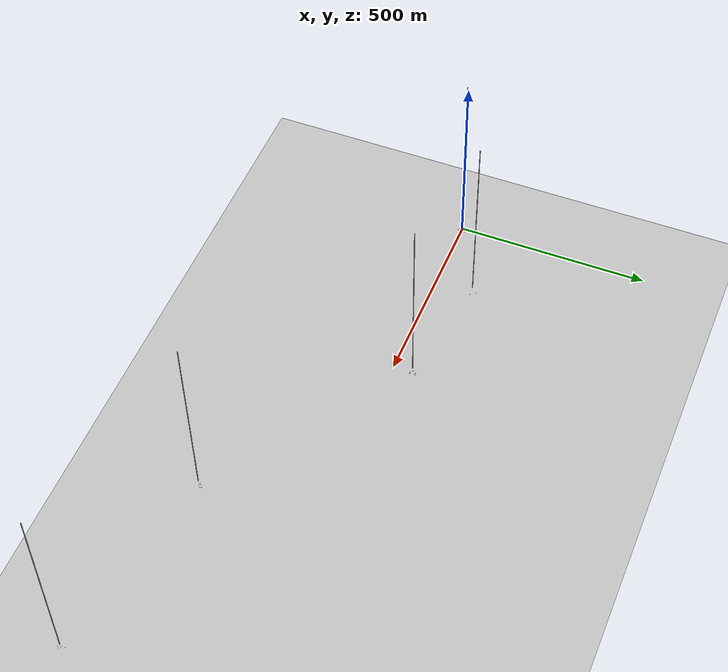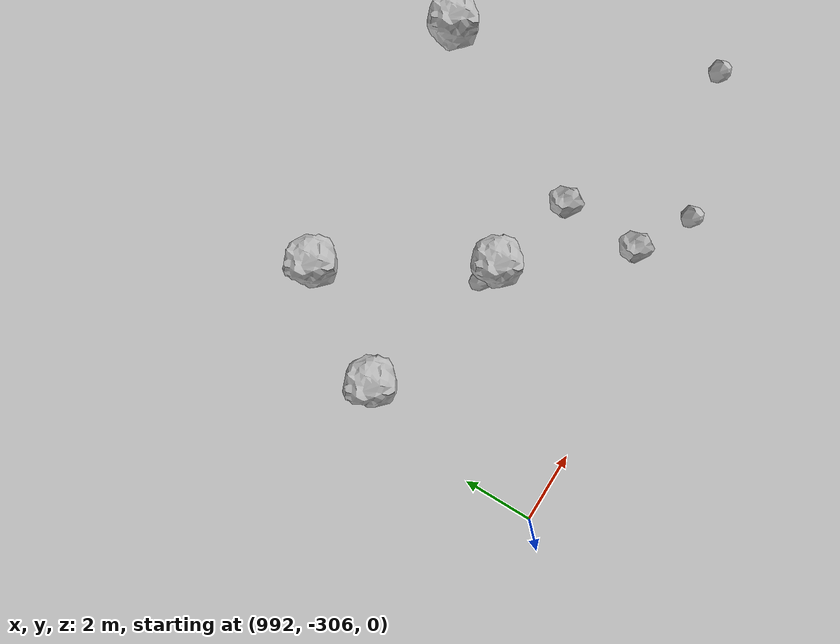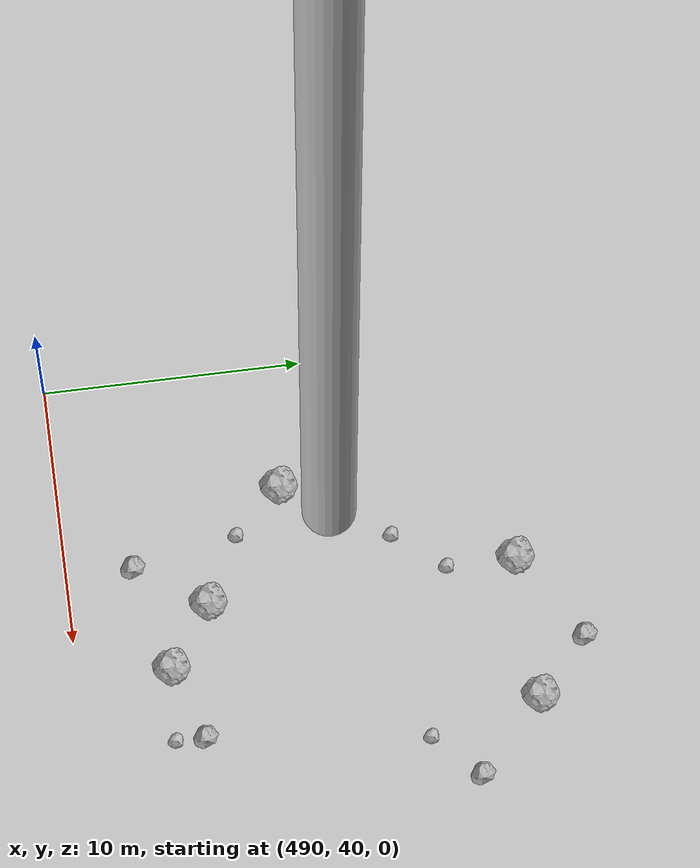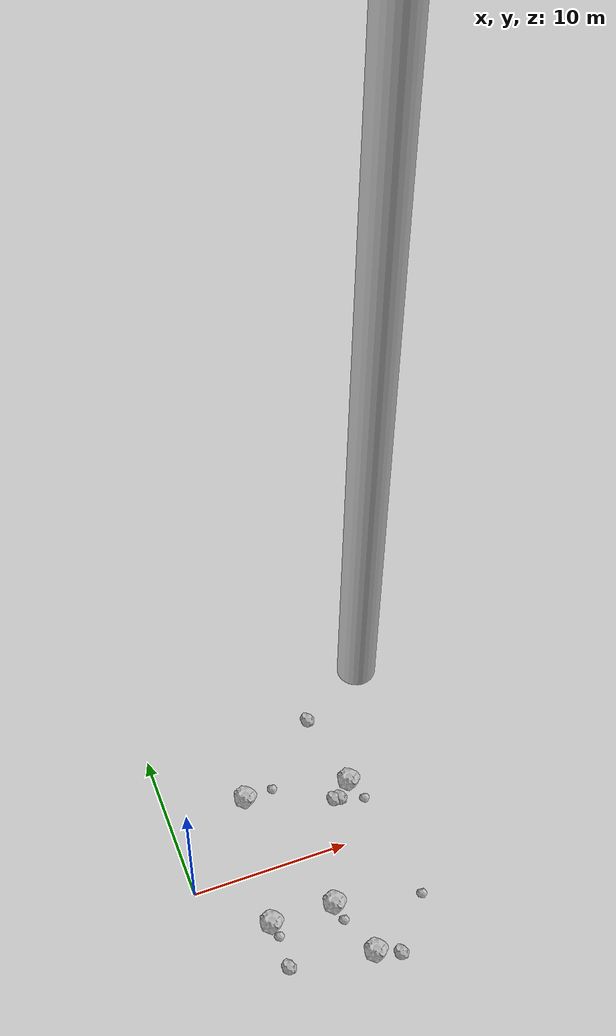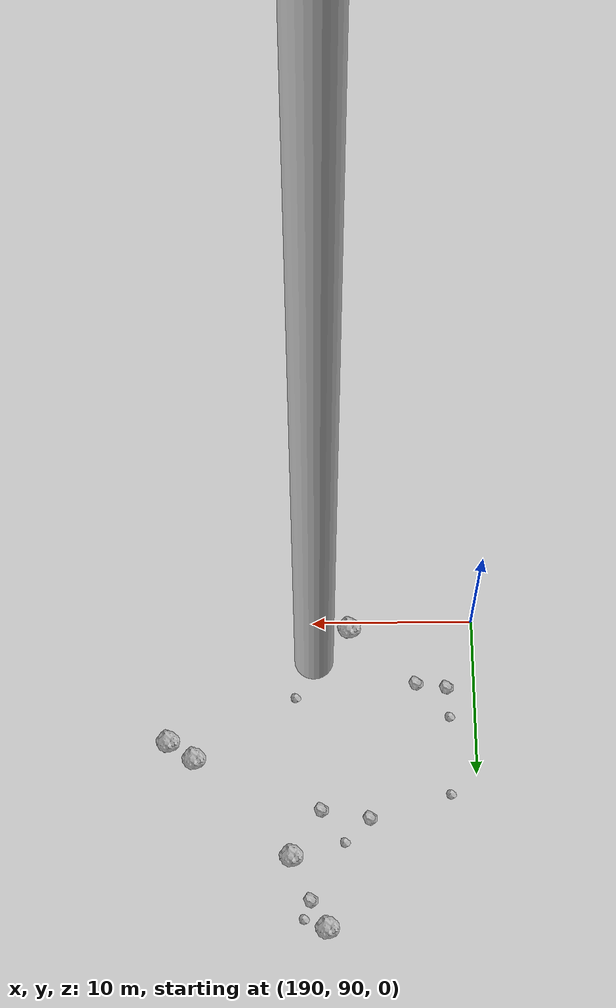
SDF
<?xml version="1.0" ?>
<sdf version="1.6">
  <world name="default">

    <include>
      <uri>model://custom_ground</uri>
    </include>

    <include>
      <uri>model://sun</uri>
    </include>

    <spherical_coordinates>
      <surface_model>EARTH_WGS84</surface_model>
      <latitude_deg>38.161479</latitude_deg>
      <longitude_deg>-122.454630</longitude_deg>
      <elevation>488.0</elevation>
      <heading_deg>90</heading_deg>
    </spherical_coordinates>

    <model name="rock1_0_0">
      <include>
        <uri>model://rock1</uri>
        <pose>9.150471801342219 -7.473052161815701 0.5 0 0 0</pose>
      </include>
    </model>
    <model name="rock1_0_1">
      <include>
        <uri>model://rock1</uri>
        <pose>5.167823400054217 5.175636106655805 0.5 0 0 0</pose>
      </include>
    </model>
    <model name="rock1_0_2">
      <include>
        <uri>model://rock1</uri>
        <pose>7.9299818525817205 -3.67184685547727 0.5 0 0 0</pose>
      </include>
    </model>
    <model name="rock1_0_3">
      <include>
        <uri>model://rock1</uri>
        <pose>3.8368474808703557 -3.5781874268712466 0.5 0 0 0</pose>
      </include>
    </model>
    <model name="rock1_0_4">
      <include>
        <uri>model://rock1</uri>
        <pose>11.921238371059673 4.133832318564892 0.5 0 0 0</pose>
      </include>
    </model>
    <model name="rock2_0_0">
      <include>
        <uri>model://rock2</uri>
        <pose>10.508399051733974 3.2614882881323553 0.3 0 0 0</pose>
      </include>
    </model>
    <model name="rock2_0_1">
      <include>
        <uri>model://rock2</uri>
        <pose>3.825563395585798 -6.585295406707871 0.3 0 0 0</pose>
      </include>
    </model>
    <model name="rock2_0_2">
      <include>
        <uri>model://rock2</uri>
        <pose>10.930734866331285 3.2168985282957365 0.3 0 0 0</pose>
      </include>
    </model>
    <model name="rock2_0_3">
      <include>
        <uri>model://rock2</uri>
        <pose>10.563114441323533 -8.015997808386096 0.3 0 0 0</pose>
      </include>
    </model>
    <model name="rock2_0_4">
      <include>
        <uri>model://rock2</uri>
        <pose>10.997699034199616 9.456145096683759 0.3 0 0 0</pose>
      </include>
    </model>
    <model name="rock3_0_0">
      <include>
        <uri>model://rock3</uri>
        <pose>3.9627393834365043 -4.527139709418961 0.2 0 0 0</pose>
      </include>
    </model>
    <model name="rock3_0_1">
      <include>
        <uri>model://rock3</uri>
        <pose>8.07414433305373 -4.85778398780349 0.2 0 0 0</pose>
      </include>
    </model>
    <model name="rock3_0_2">
      <include>
        <uri>model://rock3</uri>
        <pose>7.008905268797278 5.287390021358775 0.2 0 0 0</pose>
      </include>
    </model>
    <model name="rock3_0_3">
      <include>
        <uri>model://rock3</uri>
        <pose>13.25361083849768 -4.847750537729983 0.2 0 0 0</pose>
      </include>
    </model>
    <model name="rock3_0_4">
      <include>
        <uri>model://rock3</uri>
        <pose>12.414763310612045 2.646355239074495 0.2 0 0 0</pose>
      </include>
    </model>
    <model name="rock1_1_0">
      <include>
        <uri>model://rock1</uri>
        <pose>207.40053491550768 99.01035222062072 0.5 0 0 0</pose>
      </include>
    </model>
    <model name="rock1_1_1">
      <include>
        <uri>model://rock1</uri>
        <pose>201.45299740907 105.1947068483533 0.5 0 0 0</pose>
      </include>
    </model>
    <model name="rock1_1_2">
      <include>
        <uri>model://rock1</uri>
        <pose>209.00854979160144 97.89572977752114 0.5 0 0 0</pose>
      </include>
    </model>
    <model name="rock1_1_3">
      <include>
        <uri>model://rock1</uri>
        <pose>199.324424026757 109.60541903111258 0.5 0 0 0</pose>
      </include>
    </model>
    <model name="rock1_1_4">
      <include>
        <uri>model://rock1</uri>
        <pose>197.71725552670213 90.483261907993 0.5 0 0 0</pose>
      </include>
    </model>
    <model name="rock2_1_0">
      <include>
        <uri>model://rock2</uri>
        <pose>191.70085358847507 94.43719891479326 0.3 0 0 0</pose>
      </include>
    </model>
    <model name="rock2_1_1">
      <include>
        <uri>model://rock2</uri>
        <pose>199.59538492917244 102.29649284303642 0.3 0 0 0</pose>
      </include>
    </model>
    <model name="rock2_1_2">
      <include>
        <uri>model://rock2</uri>
        <pose>200.28814639050606 107.89798684320772 0.3 0 0 0</pose>
      </include>
    </model>
    <model name="rock2_1_3">
      <include>
        <uri>model://rock2</uri>
        <pose>196.63041585179366 102.83808341943346 0.3 0 0 0</pose>
      </include>
    </model>
    <model name="rock2_1_4">
      <include>
        <uri>model://rock2</uri>
        <pose>193.60005651765013 94.15058675718574 0.3 0 0 0</pose>
      </include>
    </model>
    <model name="rock3_1_0">
      <include>
        <uri>model://rock3</uri>
        <pose>191.6115662403056 101.33191027167507 0.2 0 0 0</pose>
      </include>
    </model>
    <model name="rock3_1_1">
      <include>
        <uri>model://rock3</uri>
        <pose>198.15097501175578 104.29584970769525 0.2 0 0 0</pose>
      </include>
    </model>
    <model name="rock3_1_2">
      <include>
        <uri>model://rock3</uri>
        <pose>200.6749475043958 109.01098142266551 0.2 0 0 0</pose>
      </include>
    </model>
    <model name="rock3_1_3">
      <include>
        <uri>model://rock3</uri>
        <pose>201.0869280340075 94.99433841527939 0.2 0 0 0</pose>
      </include>
    </model>
    <model name="rock3_1_4">
      <include>
        <uri>model://rock3</uri>
        <pose>191.5398464659155 96.31913497445817 0.2 0 0 0</pose>
      </include>
    </model>
    <model name="rock1_2_0">
      <include>
        <uri>model://rock1</uri>
        <pose>501.50585608895625 43.67626567476079 0.5 0 0 0</pose>
      </include>
    </model>
    <model name="rock1_2_1">
      <include>
        <uri>model://rock1</uri>
        <pose>498.73142863910175 57.458035392023355 0.5 0 0 0</pose>
      </include>
    </model>
    <model name="rock1_2_2">
      <include>
        <uri>model://rock1</uri>
        <pose>499.11245118252856 45.39229912715081 0.5 0 0 0</pose>
      </include>
    </model>
    <model name="rock1_2_3">
      <include>
        <uri>model://rock1</uri>
        <pose>504.26146577297106 57.75685895947929 0.5 0 0 0</pose>
      </include>
    </model>
    <model name="rock1_2_4">
      <include>
        <uri>model://rock1</uri>
        <pose>494.86662282946736 48.649978901016546 0.5 0 0 0</pose>
      </include>
    </model>
    <model name="rock2_2_0">
      <include>
        <uri>model://rock2</uri>
        <pose>502.0592009257013 59.76517866240724 0.3 0 0 0</pose>
      </include>
    </model>
    <model name="rock2_2_1">
      <include>
        <uri>model://rock2</uri>
        <pose>494.0318397506049 50.38838850160721 0.3 0 0 0</pose>
      </include>
    </model>
    <model name="rock2_2_2">
      <include>
        <uri>model://rock2</uri>
        <pose>507.04086433453404 55.17131277157275 0.3 0 0 0</pose>
      </include>
    </model>
    <model name="rock2_2_3">
      <include>
        <uri>model://rock2</uri>
        <pose>504.32437044802595 44.691929137217855 0.3 0 0 0</pose>
      </include>
    </model>
    <model name="rock2_2_4">
      <include>
        <uri>model://rock2</uri>
        <pose>497.3491859056773 42.64188131965045 0.3 0 0 0</pose>
      </include>
    </model>
    <model name="rock3_2_0">
      <include>
        <uri>model://rock3</uri>
        <pose>505.33243532535676 53.34719330410047 0.2 0 0 0</pose>
      </include>
    </model>
    <model name="rock3_2_1">
      <include>
        <uri>model://rock3</uri>
        <pose>497.21984541513547 52.74769599617005 0.2 0 0 0</pose>
      </include>
    </model>
    <model name="rock3_2_2">
      <include>
        <uri>model://rock3</uri>
        <pose>498.71901266122643 54.74029400108277 0.2 0 0 0</pose>
      </include>
    </model>
    <model name="rock3_2_3">
      <include>
        <uri>model://rock3</uri>
        <pose>496.53744859041353 46.7479717486726 0.2 0 0 0</pose>
      </include>
    </model>
    <model name="rock3_2_4">
      <include>
        <uri>model://rock3</uri>
        <pose>504.32426220473025 43.49907236743203 0.2 0 0 0</pose>
      </include>
    </model>
    <model name="rock1_3_0">
      <include>
        <uri>model://rock1</uri>
        <pose>1001.9702157941053 -293.1332281716412 0.5 0 0 0</pose>
      </include>
    </model>
    <model name="rock1_3_1">
      <include>
        <uri>model://rock1</uri>
        <pose>993.1032872994941 -300.38795789889616 0.5 0 0 0</pose>
      </include>
    </model>
    <model name="rock1_3_2">
      <include>
        <uri>model://rock1</uri>
        <pose>995.0341563446982 -297.32745124712767 0.5 0 0 0</pose>
      </include>
    </model>
    <model name="rock1_3_3">
      <include>
        <uri>model://rock1</uri>
        <pose>997.6120049079111 -301.60613455871163 0.5 0 0 0</pose>
      </include>
    </model>
    <model name="rock1_3_4">
      <include>
        <uri>model://rock1</uri>
        <pose>1002.6491599809885 -297.1688874680022 0.5 0 0 0</pose>
      </include>
    </model>
    <model name="rock2_3_0">
      <include>
        <uri>model://rock2</uri>
        <pose>999.9105556020061 -304.61937992189655 0.3 0 0 0</pose>
      </include>
    </model>
    <model name="rock2_3_1">
      <include>
        <uri>model://rock2</uri>
        <pose>1008.749808559978 -303.5140361817854 0.3 0 0 0</pose>
      </include>
    </model>
    <model name="rock2_3_2">
      <include>
        <uri>model://rock2</uri>
        <pose>1002.4601033539873 -292.4003200903823 0.3 0 0 0</pose>
      </include>
    </model>
    <model name="rock2_3_3">
      <include>
        <uri>model://rock2</uri>
        <pose>999.9846163948885 -302.3512212020428 0.3 0 0 0</pose>
      </include>
    </model>
    <model name="rock2_3_4">
      <include>
        <uri>model://rock2</uri>
        <pose>1007.9121609986532 -303.5735056420715 0.3 0 0 0</pose>
      </include>
    </model>
    <model name="rock3_3_0">
      <include>
        <uri>model://rock3</uri>
        <pose>1005.3227667961042 -304.1808171602129 0.2 0 0 0</pose>
      </include>
    </model>
    <model name="rock3_3_1">
      <include>
        <uri>model://rock3</uri>
        <pose>1009.3102431128603 -298.8412216231837 0.2 0 0 0</pose>
      </include>
    </model>
    <model name="rock3_3_2">
      <include>
        <uri>model://rock3</uri>
        <pose>1001.4205182321255 -305.5785111241148 0.2 0 0 0</pose>
      </include>
    </model>
    <model name="rock3_3_3">
      <include>
        <uri>model://rock3</uri>
        <pose>1001.7790462316362 -292.4400143673553 0.2 0 0 0</pose>
      </include>
    </model>
    <model name="rock3_3_4">
      <include>
        <uri>model://rock3</uri>
        <pose>996.9088944383129 -301.49244279418525 0.2 0 0 0</pose>
      </include>
    </model>
    <model name="rock1_4_0">
      <include>
        <uri>model://rock1</uri>
        <pose>1492.6674760228334 -405.9397026775386 0.5 0 0 0</pose>
      </include>
    </model>
    <model name="rock1_4_1">
      <include>
        <uri>model://rock1</uri>
        <pose>1499.3713641201857 -409.0641141574312 0.5 0 0 0</pose>
      </include>
    </model>
    <model name="rock1_4_2">
      <include>
        <uri>model://rock1</uri>
        <pose>1502.1200288672574 -405.5060197297939 0.5 0 0 0</pose>
      </include>
    </model>
    <model name="rock1_4_3">
      <include>
        <uri>model://rock1</uri>
        <pose>1494.763383377318 -391.5716209142082 0.5 0 0 0</pose>
      </include>
    </model>
    <model name="rock1_4_4">
      <include>
        <uri>model://rock1</uri>
        <pose>1497.0386172733652 -400.6385502942194 0.5 0 0 0</pose>
      </include>
    </model>
    <model name="rock2_4_0">
      <include>
        <uri>model://rock2</uri>
        <pose>1507.8474949789181 -394.7861753045297 0.3 0 0 0</pose>
      </include>
    </model>
    <model name="rock2_4_1">
      <include>
        <uri>model://rock2</uri>
        <pose>1499.272320612296 -403.50972850580064 0.3 0 0 0</pose>
      </include>
    </model>
    <model name="rock2_4_2">
      <include>
        <uri>model://rock2</uri>
        <pose>1491.5531256271163 -399.49945642128245 0.3 0 0 0</pose>
      </include>
    </model>
    <model name="rock2_4_3">
      <include>
        <uri>model://rock2</uri>
        <pose>1501.2921687246055 -402.1447819464599 0.3 0 0 0</pose>
      </include>
    </model>
    <model name="rock2_4_4">
      <include>
        <uri>model://rock2</uri>
        <pose>1493.4415460468924 -401.087135587877 0.3 0 0 0</pose>
      </include>
    </model>
    <model name="rock3_4_0">
      <include>
        <uri>model://rock3</uri>
        <pose>1490.9182207119766 -399.38060085267114 0.2 0 0 0</pose>
      </include>
    </model>
    <model name="rock3_4_1">
      <include>
        <uri>model://rock3</uri>
        <pose>1501.5704577457107 -401.5006532365832 0.2 0 0 0</pose>
      </include>
    </model>
    <model name="rock3_4_2">
      <include>
        <uri>model://rock3</uri>
        <pose>1497.9084446373677 -393.13850128277545 0.2 0 0 0</pose>
      </include>
    </model>
    <model name="rock3_4_3">
      <include>
        <uri>model://rock3</uri>
        <pose>1492.2090239673737 -395.2101633482672 0.2 0 0 0</pose>
      </include>
    </model>
    <model name="rock3_4_4">
      <include>
        <uri>model://rock3</uri>
        <pose>1499.780846985125 -394.76188007804365 0.2 0 0 0</pose>
      </include>
    </model>

    <model name="cylinder_1">
      <static>true</static>
      <link name="link">
        <visual name="visual">
          <geometry>
            <cylinder>
              <radius>1</radius>
              <length>500</length>
            </cylinder>
          </geometry>
        </visual>
      </link>
      <pose>10 0 270 0 0 0</pose>
    </model>

    <model name="cylinder_2">
      <static>true</static>
      <link name="link">
        <visual name="visual">
          <geometry>
            <cylinder>
              <radius>1</radius>
              <length>500</length>
            </cylinder>
          </geometry>
        </visual>
      </link>
      <pose>200 100 270 0 0 0</pose>
    </model>

    <model name="cylinder_3">
      <static>true</static>
      <link name="link">
        <visual name="visual">
          <geometry>
            <cylinder>
              <radius>1</radius>
              <length>500</length>
            </cylinder>
          </geometry>
        </visual>
      </link>
      <pose>500 50 270 0 0 0</pose>
    </model>

    <model name="cylinder_4">
      <static>true</static>
      <link name="link">
        <visual name="visual">
          <geometry>
            <cylinder>
              <radius>1</radius>
              <length>500</length>
            </cylinder>
          </geometry>
        </visual>
      </link>
      <pose>1000 -300 270 0 0 0</pose>
    </model>

    <model name="cylinder_5">
      <static>true</static>
      <link name="link">
        <visual name="visual">
          <geometry>
            <cylinder>
              <radius>1</radius>
              <length>500</length>
            </cylinder>
          </geometry>
        </visual>
      </link>
      <pose>1500 -400 270 0 0 0</pose>
    </model>

  </world>
</sdf>

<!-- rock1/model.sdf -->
<sdf version="1.6">
  <model name="rock1">
    <static>true</static> <!-- Set to true if the model should not move -->
    <pose>0 0 0 0 0 0</pose>

    <!--z offset is 0.5 for full scale-->

    <link name="link">
      <collision name="rock1_collision">
        <geometry>
          <mesh>
            <uri>model://meshes/rock1.dae</uri>
          </mesh>
        </geometry>
      </collision>
      <visual name="rock1_visual">
        <geometry>
          <mesh>
            <uri>model://meshes/rock1.dae</uri>
          </mesh>
        </geometry>
        <material>
          <script>
            <uri>model://materials/scripts/sand_pebbles.material</uri>
            <name>custom_ground/Image</name>
          </script>
        </material>
      </visual>
    </link>
  </model>
</sdf>

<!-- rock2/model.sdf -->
<sdf version="1.6">
  <model name="rock2">
    <static>true</static> <!-- Set to true if the model should not move -->
    <pose>0 0 0 0 0 0</pose>

    <!--z offset is 0.3 for full scale-->

    <link name="link">
      <collision name="rock2_collision">
        <geometry>
          <mesh>
            <uri>model://meshes/rock2.dae</uri>
          </mesh>
        </geometry>
      </collision>
      <visual name="rock2_visual">
        <geometry>
          <mesh>
            <uri>model://meshes/rock2.dae</uri>
          </mesh>
        </geometry>
        <material>
          <script>
            <uri>model://materials/scripts/sand_pebbles.material</uri>
            <name>custom_ground/Image</name>
          </script>
        </material>
      </visual>
    </link>
  </model>
</sdf>

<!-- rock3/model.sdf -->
<sdf version="1.6">
  <model name="rock3">
    <static>true</static> <!-- Set to true if the model should not move -->
    <pose>0 0 0 0 0 0</pose>

    <!--z offset is 0.2 for full scale-->

    <link name="link">
      <collision name="rock3_collision">
        <geometry>
          <mesh>
            <uri>model://meshes/rock3.dae</uri>
          </mesh>
        </geometry>
      </collision>
      <visual name="rock3_visual">
        <geometry>
          <mesh>
            <uri>model://meshes/rock3.dae</uri>
          </mesh>
        </geometry>
        <material>
          <script>
            <uri>model://materials/scripts/sand_pebbles.material</uri>
            <name>custom_ground/Image</name>
          </script>
        </material>
      </visual>
    </link>
  </model>
</sdf>

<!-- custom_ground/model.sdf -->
<sdf version="1.6">
  <model name="custom_ground">
    <static>true</static> <!-- Ground is static and immovable -->
    <link name="ground_link">
      <pose>240 0 0 0 0 0</pose> <!-- Position and orientation relative to the world -->
      <!-- Visual Representation -->
      <visual name="ground_visual">
        <geometry>
          <plane>
            <normal>0 0 1</normal> <!-- Upward facing plane -->
            <size>500 500</size> <!-- Size of the plane -->
          </plane>
        </geometry>
        <material>
          <script>
            <uri>model://materials/scripts/sand_pebbles.material</uri>
            <name>custom_ground/Image</name>
          </script>
        </material>
      </visual>

      <!-- Collision Representation -->
      <collision name="ground_collision">
        <geometry>
          <plane>
            <normal>0 0 1</normal>
            <size>100 100</size>
          </plane>
        </geometry>
      </collision>

    </link>
  </model>
</sdf>
